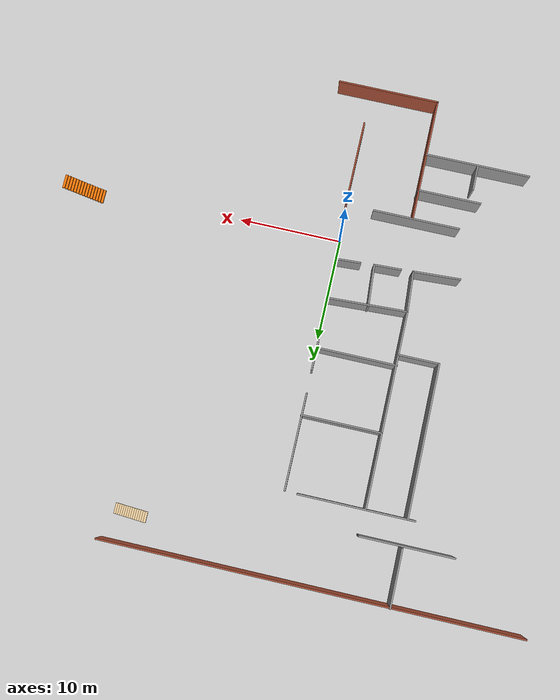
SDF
<sdf version="1.7">
 <world name="default">
  <model name="ground_plane">
   <static>1</static>
   <link name="link">
    <collision name="collision">
     <geometry><plane><normal>0 0 1</normal><size>100 100</size></plane></geometry>
     <surface><friction><ode><mu>100</mu><mu2>50</mu2></ode></friction></surface>
    </collision>
    <visual name="visual">
     <cast_shadows>0</cast_shadows>
     <geometry><plane><normal>0 0 1</normal><size>100 100</size></plane></geometry>
     <material>
      <script><uri>file://media/materials/scripts/gazebo.material</uri><name>Gazebo/Grey</name></script>
     </material>
    </visual>
   </link>
  </model>
  <model name="Sherman_ground">
   <pose>-0.396386 10.2382 0 0 -0 0</pose>
   <link name="Stairs_1">
    <visual name="Stairs_1_Visual_0">
     <pose>24.2922 -9.52404 0.083333 0 -0 1.5708</pose>
     <geometry><box><size>1.306 0.233333 0.166667</size></box></geometry>
     <material>
      <script><uri>file://media/materials/scripts/gazebo.material</uri><name>Gazebo/Grey</name></script>
      <ambient>0.996078 0.47451 0.0196078 1</ambient>
     </material>
     <meta><layer>0</layer></meta>
    </visual>
    <collision name="Stairs_1_Collision_0">
     <geometry><box><size>1.306 0.233333 0.166667</size></box></geometry>
     <pose>24.2922 -9.52404 0.083333 0 -0 1.5708</pose>
    </collision>
    <visual name="Stairs_1_Visual_1">
     <pose>24.5255 -9.52404 0.25 0 -0 1.5708</pose>
     <geometry><box><size>1.306 0.233333 0.166667</size></box></geometry>
     <material>
      <script><uri>file://media/materials/scripts/gazebo.material</uri><name>Gazebo/Grey</name></script>
      <ambient>0.996078 0.47451 0.0196078 1</ambient>
     </material>
     <meta><layer>0</layer></meta>
    </visual>
    <collision name="Stairs_1_Collision_1">
     <geometry><box><size>1.306 0.233333 0.166667</size></box></geometry>
     <pose>24.5255 -9.52404 0.25 0 -0 1.5708</pose>
    </collision>
    <visual name="Stairs_1_Visual_2">
     <pose>24.7589 -9.52404 0.416667 0 -0 1.5708</pose>
     <geometry><box><size>1.306 0.233333 0.166667</size></box></geometry>
     <material>
      <script><uri>file://media/materials/scripts/gazebo.material</uri><name>Gazebo/Grey</name></script>
      <ambient>0.996078 0.47451 0.0196078 1</ambient>
     </material>
     <meta><layer>0</layer></meta>
    </visual>
    <collision name="Stairs_1_Collision_2">
     <geometry><box><size>1.306 0.233333 0.166667</size></box></geometry>
     <pose>24.7589 -9.52404 0.416667 0 -0 1.5708</pose>
    </collision>
    <visual name="Stairs_1_Visual_3">
     <pose>24.9922 -9.52404 0.583333 0 -0 1.5708</pose>
     <geometry><box><size>1.306 0.233333 0.166667</size></box></geometry>
     <material>
      <script><uri>file://media/materials/scripts/gazebo.material</uri><name>Gazebo/Grey</name></script>
      <ambient>0.996078 0.47451 0.0196078 1</ambient>
     </material>
     <meta><layer>0</layer></meta>
    </visual>
    <collision name="Stairs_1_Collision_3">
     <geometry><box><size>1.306 0.233333 0.166667</size></box></geometry>
     <pose>24.9922 -9.52404 0.583333 0 -0 1.5708</pose>
    </collision>
    <visual name="Stairs_1_Visual_4">
     <pose>25.2255 -9.52404 0.75 0 -0 1.5708</pose>
     <geometry><box><size>1.306 0.233333 0.166667</size></box></geometry>
     <material>
      <script><uri>file://media/materials/scripts/gazebo.material</uri><name>Gazebo/Grey</name></script>
      <ambient>0.996078 0.47451 0.0196078 1</ambient>
     </material>
     <meta><layer>0</layer></meta>
    </visual>
    <collision name="Stairs_1_Collision_4">
     <geometry><box><size>1.306 0.233333 0.166667</size></box></geometry>
     <pose>25.2255 -9.52404 0.75 0 -0 1.5708</pose>
    </collision>
    <visual name="Stairs_1_Visual_5">
     <pose>25.4589 -9.52404 0.916667 0 -0 1.5708</pose>
     <geometry><box><size>1.306 0.233333 0.166667</size></box></geometry>
     <material>
      <script><uri>file://media/materials/scripts/gazebo.material</uri><name>Gazebo/Grey</name></script>
      <ambient>0.996078 0.47451 0.0196078 1</ambient>
     </material>
     <meta><layer>0</layer></meta>
    </visual>
    <collision name="Stairs_1_Collision_5">
     <geometry><box><size>1.306 0.233333 0.166667</size></box></geometry>
     <pose>25.4589 -9.52404 0.916667 0 -0 1.5708</pose>
    </collision>
    <visual name="Stairs_1_Visual_6">
     <pose>25.6922 -9.52404 1.08333 0 -0 1.5708</pose>
     <geometry><box><size>1.306 0.233333 0.166667</size></box></geometry>
     <material>
      <script><uri>file://media/materials/scripts/gazebo.material</uri><name>Gazebo/Grey</name></script>
      <ambient>0.996078 0.47451 0.0196078 1</ambient>
     </material>
     <meta><layer>0</layer></meta>
    </visual>
    <collision name="Stairs_1_Collision_6">
     <geometry><box><size>1.306 0.233333 0.166667</size></box></geometry>
     <pose>25.6922 -9.52404 1.08333 0 -0 1.5708</pose>
    </collision>
    <visual name="Stairs_1_Visual_7">
     <pose>25.9255 -9.52404 1.25 0 -0 1.5708</pose>
     <geometry><box><size>1.306 0.233333 0.166667</size></box></geometry>
     <material>
      <script><uri>file://media/materials/scripts/gazebo.material</uri><name>Gazebo/Grey</name></script>
      <ambient>0.996078 0.47451 0.0196078 1</ambient>
     </material>
     <meta><layer>0</layer></meta>
    </visual>
    <collision name="Stairs_1_Collision_7">
     <geometry><box><size>1.306 0.233333 0.166667</size></box></geometry>
     <pose>25.9255 -9.52404 1.25 0 -0 1.5708</pose>
    </collision>
    <visual name="Stairs_1_Visual_8">
     <pose>26.1589 -9.52404 1.41667 0 -0 1.5708</pose>
     <geometry><box><size>1.306 0.233333 0.166667</size></box></geometry>
     <material>
      <script><uri>file://media/materials/scripts/gazebo.material</uri><name>Gazebo/Grey</name></script>
      <ambient>0.996078 0.47451 0.0196078 1</ambient>
     </material>
     <meta><layer>0</layer></meta>
    </visual>
    <collision name="Stairs_1_Collision_8">
     <geometry><box><size>1.306 0.233333 0.166667</size></box></geometry>
     <pose>26.1589 -9.52404 1.41667 0 -0 1.5708</pose>
    </collision>
    <visual name="Stairs_1_Visual_9">
     <pose>26.3922 -9.52404 1.58333 0 -0 1.5708</pose>
     <geometry><box><size>1.306 0.233333 0.166667</size></box></geometry>
     <material>
      <script><uri>file://media/materials/scripts/gazebo.material</uri><name>Gazebo/Grey</name></script>
      <ambient>0.996078 0.47451 0.0196078 1</ambient>
     </material>
     <meta><layer>0</layer></meta>
    </visual>
    <collision name="Stairs_1_Collision_9">
     <geometry><box><size>1.306 0.233333 0.166667</size></box></geometry>
     <pose>26.3922 -9.52404 1.58333 0 -0 1.5708</pose>
    </collision>
    <visual name="Stairs_1_Visual_10">
     <pose>26.6255 -9.52404 1.75 0 -0 1.5708</pose>
     <geometry><box><size>1.306 0.233333 0.166667</size></box></geometry>
     <material>
      <script><uri>file://media/materials/scripts/gazebo.material</uri><name>Gazebo/Grey</name></script>
      <ambient>0.996078 0.47451 0.0196078 1</ambient>
     </material>
     <meta><layer>0</layer></meta>
    </visual>
    <collision name="Stairs_1_Collision_10">
     <geometry><box><size>1.306 0.233333 0.166667</size></box></geometry>
     <pose>26.6255 -9.52404 1.75 0 -0 1.5708</pose>
    </collision>
    <visual name="Stairs_1_Visual_11">
     <pose>26.8589 -9.52404 1.91667 0 -0 1.5708</pose>
     <geometry><box><size>1.306 0.233333 0.166667</size></box></geometry>
     <material>
      <script><uri>file://media/materials/scripts/gazebo.material</uri><name>Gazebo/Grey</name></script>
      <ambient>0.996078 0.47451 0.0196078 1</ambient>
     </material>
     <meta><layer>0</layer></meta>
    </visual>
    <collision name="Stairs_1_Collision_11">
     <geometry><box><size>1.306 0.233333 0.166667</size></box></geometry>
     <pose>26.8589 -9.52404 1.91667 0 -0 1.5708</pose>
    </collision>
    <visual name="Stairs_1_Visual_12">
     <pose>27.0922 -9.52404 2.08333 0 -0 1.5708</pose>
     <geometry><box><size>1.306 0.233333 0.166667</size></box></geometry>
     <material>
      <script><uri>file://media/materials/scripts/gazebo.material</uri><name>Gazebo/Grey</name></script>
      <ambient>0.996078 0.47451 0.0196078 1</ambient>
     </material>
     <meta><layer>0</layer></meta>
    </visual>
    <collision name="Stairs_1_Collision_12">
     <geometry><box><size>1.306 0.233333 0.166667</size></box></geometry>
     <pose>27.0922 -9.52404 2.08333 0 -0 1.5708</pose>
    </collision>
    <visual name="Stairs_1_Visual_13">
     <pose>27.3255 -9.52404 2.25 0 -0 1.5708</pose>
     <geometry><box><size>1.306 0.233333 0.166667</size></box></geometry>
     <material>
      <script><uri>file://media/materials/scripts/gazebo.material</uri><name>Gazebo/Grey</name></script>
      <ambient>0.996078 0.47451 0.0196078 1</ambient>
     </material>
     <meta><layer>0</layer></meta>
    </visual>
    <collision name="Stairs_1_Collision_13">
     <geometry><box><size>1.306 0.233333 0.166667</size></box></geometry>
     <pose>27.3255 -9.52404 2.25 0 -0 1.5708</pose>
    </collision>
    <visual name="Stairs_1_Visual_14">
     <pose>27.5589 -9.52403 2.41667 0 -0 1.5708</pose>
     <geometry><box><size>1.306 0.233333 0.166667</size></box></geometry>
     <material>
      <script><uri>file://media/materials/scripts/gazebo.material</uri><name>Gazebo/Grey</name></script>
      <ambient>0.996078 0.47451 0.0196078 1</ambient>
     </material>
     <meta><layer>0</layer></meta>
    </visual>
    <collision name="Stairs_1_Collision_14">
     <geometry><box><size>1.306 0.233333 0.166667</size></box></geometry>
     <pose>27.5589 -9.52403 2.41667 0 -0 1.5708</pose>
    </collision>
   </link>
   <link name="Stairs_2">
    <visual name="Stairs_2_Visual_0">
     <pose>15.3017 19.6509 0.083333 0 -0 -1.5708</pose>
     <geometry><box><size>1 0.233333 0.166667</size></box></geometry>
     <material>
      <script><uri>file://media/materials/scripts/gazebo.material</uri><name>Gazebo/Grey</name></script>
      <ambient>0.921569 0.807843 0.615686 1</ambient>
     </material>
     <meta><layer>0</layer></meta>
    </visual>
    <collision name="Stairs_2_Collision_0">
     <geometry><box><size>1 0.233333 0.166667</size></box></geometry>
     <pose>15.3017 19.6509 0.083333 0 -0 -1.5708</pose>
    </collision>
    <visual name="Stairs_2_Visual_1">
     <pose>15.0684 19.6509 0.25 0 -0 -1.5708</pose>
     <geometry><box><size>1 0.233333 0.166667</size></box></geometry>
     <material>
      <script><uri>file://media/materials/scripts/gazebo.material</uri><name>Gazebo/Grey</name></script>
      <ambient>0.921569 0.807843 0.615686 1</ambient>
     </material>
     <meta><layer>0</layer></meta>
    </visual>
    <collision name="Stairs_2_Collision_1">
     <geometry><box><size>1 0.233333 0.166667</size></box></geometry>
     <pose>15.0684 19.6509 0.25 0 -0 -1.5708</pose>
    </collision>
    <visual name="Stairs_2_Visual_2">
     <pose>14.835 19.6509 0.416667 0 -0 -1.5708</pose>
     <geometry><box><size>1 0.233333 0.166667</size></box></geometry>
     <material>
      <script><uri>file://media/materials/scripts/gazebo.material</uri><name>Gazebo/Grey</name></script>
      <ambient>0.921569 0.807843 0.615686 1</ambient>
     </material>
     <meta><layer>0</layer></meta>
    </visual>
    <collision name="Stairs_2_Collision_2">
     <geometry><box><size>1 0.233333 0.166667</size></box></geometry>
     <pose>14.835 19.6509 0.416667 0 -0 -1.5708</pose>
    </collision>
    <visual name="Stairs_2_Visual_3">
     <pose>14.6017 19.6509 0.583333 0 -0 -1.5708</pose>
     <geometry><box><size>1 0.233333 0.166667</size></box></geometry>
     <material>
      <script><uri>file://media/materials/scripts/gazebo.material</uri><name>Gazebo/Grey</name></script>
      <ambient>0.921569 0.807843 0.615686 1</ambient>
     </material>
     <meta><layer>0</layer></meta>
    </visual>
    <collision name="Stairs_2_Collision_3">
     <geometry><box><size>1 0.233333 0.166667</size></box></geometry>
     <pose>14.6017 19.6509 0.583333 0 -0 -1.5708</pose>
    </collision>
    <visual name="Stairs_2_Visual_4">
     <pose>14.3684 19.6509 0.75 0 -0 -1.5708</pose>
     <geometry><box><size>1 0.233333 0.166667</size></box></geometry>
     <material>
      <script><uri>file://media/materials/scripts/gazebo.material</uri><name>Gazebo/Grey</name></script>
      <ambient>0.921569 0.807843 0.615686 1</ambient>
     </material>
     <meta><layer>0</layer></meta>
    </visual>
    <collision name="Stairs_2_Collision_4">
     <geometry><box><size>1 0.233333 0.166667</size></box></geometry>
     <pose>14.3684 19.6509 0.75 0 -0 -1.5708</pose>
    </collision>
    <visual name="Stairs_2_Visual_5">
     <pose>14.135 19.6509 0.916667 0 -0 -1.5708</pose>
     <geometry><box><size>1 0.233333 0.166667</size></box></geometry>
     <material>
      <script><uri>file://media/materials/scripts/gazebo.material</uri><name>Gazebo/Grey</name></script>
      <ambient>0.921569 0.807843 0.615686 1</ambient>
     </material>
     <meta><layer>0</layer></meta>
    </visual>
    <collision name="Stairs_2_Collision_5">
     <geometry><box><size>1 0.233333 0.166667</size></box></geometry>
     <pose>14.135 19.6509 0.916667 0 -0 -1.5708</pose>
    </collision>
    <visual name="Stairs_2_Visual_6">
     <pose>13.9017 19.6509 1.08333 0 -0 -1.5708</pose>
     <geometry><box><size>1 0.233333 0.166667</size></box></geometry>
     <material>
      <script><uri>file://media/materials/scripts/gazebo.material</uri><name>Gazebo/Grey</name></script>
      <ambient>0.921569 0.807843 0.615686 1</ambient>
     </material>
     <meta><layer>0</layer></meta>
    </visual>
    <collision name="Stairs_2_Collision_6">
     <geometry><box><size>1 0.233333 0.166667</size></box></geometry>
     <pose>13.9017 19.6509 1.08333 0 -0 -1.5708</pose>
    </collision>
    <visual name="Stairs_2_Visual_7">
     <pose>13.6684 19.6509 1.25 0 -0 -1.5708</pose>
     <geometry><box><size>1 0.233333 0.166667</size></box></geometry>
     <material>
      <script><uri>file://media/materials/scripts/gazebo.material</uri><name>Gazebo/Grey</name></script>
      <ambient>0.921569 0.807843 0.615686 1</ambient>
     </material>
     <meta><layer>0</layer></meta>
    </visual>
    <collision name="Stairs_2_Collision_7">
     <geometry><box><size>1 0.233333 0.166667</size></box></geometry>
     <pose>13.6684 19.6509 1.25 0 -0 -1.5708</pose>
    </collision>
    <visual name="Stairs_2_Visual_8">
     <pose>13.435 19.6509 1.41667 0 -0 -1.5708</pose>
     <geometry><box><size>1 0.233333 0.166667</size></box></geometry>
     <material>
      <script><uri>file://media/materials/scripts/gazebo.material</uri><name>Gazebo/Grey</name></script>
      <ambient>0.921569 0.807843 0.615686 1</ambient>
     </material>
     <meta><layer>0</layer></meta>
    </visual>
    <collision name="Stairs_2_Collision_8">
     <geometry><box><size>1 0.233333 0.166667</size></box></geometry>
     <pose>13.435 19.6509 1.41667 0 -0 -1.5708</pose>
    </collision>
    <visual name="Stairs_2_Visual_9">
     <pose>13.2017 19.6509 1.58333 0 -0 -1.5708</pose>
     <geometry><box><size>1 0.233333 0.166667</size></box></geometry>
     <material>
      <script><uri>file://media/materials/scripts/gazebo.material</uri><name>Gazebo/Grey</name></script>
      <ambient>0.921569 0.807843 0.615686 1</ambient>
     </material>
     <meta><layer>0</layer></meta>
    </visual>
    <collision name="Stairs_2_Collision_9">
     <geometry><box><size>1 0.233333 0.166667</size></box></geometry>
     <pose>13.2017 19.6509 1.58333 0 -0 -1.5708</pose>
    </collision>
    <visual name="Stairs_2_Visual_10">
     <pose>12.9684 19.6509 1.75 0 -0 -1.5708</pose>
     <geometry><box><size>1 0.233333 0.166667</size></box></geometry>
     <material>
      <script><uri>file://media/materials/scripts/gazebo.material</uri><name>Gazebo/Grey</name></script>
      <ambient>0.921569 0.807843 0.615686 1</ambient>
     </material>
     <meta><layer>0</layer></meta>
    </visual>
    <collision name="Stairs_2_Collision_10">
     <geometry><box><size>1 0.233333 0.166667</size></box></geometry>
     <pose>12.9684 19.6509 1.75 0 -0 -1.5708</pose>
    </collision>
    <visual name="Stairs_2_Visual_11">
     <pose>12.735 19.6509 1.91667 0 -0 -1.5708</pose>
     <geometry><box><size>1 0.233333 0.166667</size></box></geometry>
     <material>
      <script><uri>file://media/materials/scripts/gazebo.material</uri><name>Gazebo/Grey</name></script>
      <ambient>0.921569 0.807843 0.615686 1</ambient>
     </material>
     <meta><layer>0</layer></meta>
    </visual>
    <collision name="Stairs_2_Collision_11">
     <geometry><box><size>1 0.233333 0.166667</size></box></geometry>
     <pose>12.735 19.6509 1.91667 0 -0 -1.5708</pose>
    </collision>
    <visual name="Stairs_2_Visual_12">
     <pose>12.5017 19.6509 2.08333 0 -0 -1.5708</pose>
     <geometry><box><size>1 0.233333 0.166667</size></box></geometry>
     <material>
      <script><uri>file://media/materials/scripts/gazebo.material</uri><name>Gazebo/Grey</name></script>
      <ambient>0.921569 0.807843 0.615686 1</ambient>
     </material>
     <meta><layer>0</layer></meta>
    </visual>
    <collision name="Stairs_2_Collision_12">
     <geometry><box><size>1 0.233333 0.166667</size></box></geometry>
     <pose>12.5017 19.6509 2.08333 0 -0 -1.5708</pose>
    </collision>
    <visual name="Stairs_2_Visual_13">
     <pose>12.2684 19.6509 2.25 0 -0 -1.5708</pose>
     <geometry><box><size>1 0.233333 0.166667</size></box></geometry>
     <material>
      <script><uri>file://media/materials/scripts/gazebo.material</uri><name>Gazebo/Grey</name></script>
      <ambient>0.921569 0.807843 0.615686 1</ambient>
     </material>
     <meta><layer>0</layer></meta>
    </visual>
    <collision name="Stairs_2_Collision_13">
     <geometry><box><size>1 0.233333 0.166667</size></box></geometry>
     <pose>12.2684 19.6509 2.25 0 -0 -1.5708</pose>
    </collision>
    <visual name="Stairs_2_Visual_14">
     <pose>12.035 19.6509 2.41667 0 -0 -1.5708</pose>
     <geometry><box><size>1 0.233333 0.166667</size></box></geometry>
     <material>
      <script><uri>file://media/materials/scripts/gazebo.material</uri><name>Gazebo/Grey</name></script>
      <ambient>0.921569 0.807843 0.615686 1</ambient>
     </material>
     <meta><layer>0</layer></meta>
    </visual>
    <collision name="Stairs_2_Collision_14">
     <geometry><box><size>1 0.233333 0.166667</size></box></geometry>
     <pose>12.035 19.6509 2.41667 0 -0 -1.5708</pose>
    </collision>
   </link>
   <link name="Wall_109">
    <collision name="Wall_109_Collision">
     <geometry><box><size>8.5 0.15 2.5</size></box></geometry>
     <pose>0 0 1.25 0 -0 0</pose>
    </collision>
    <visual name="Wall_109_Visual">
     <pose>0 0 1.25 0 -0 0</pose>
     <geometry><box><size>8.5 0.15 2.5</size></box></geometry>
     <material>
      <script><uri>file://media/materials/scripts/gazebo.material</uri><name>Gazebo/Grey</name></script>
      <ambient>1 1 1 1</ambient>
     </material>
     <meta><layer>0</layer></meta>
    </visual>
    <pose>-6.35702 -13.3085 0 0 -0 3.14159</pose>
   </link>
   <link name="Wall_130">
    <collision name="Wall_130_Collision">
     <geometry><box><size>4.66154 0.15 2.5</size></box></geometry>
     <pose>0 0 1.25 0 -0 0</pose>
    </collision>
    <visual name="Wall_130_Visual">
     <pose>0 0 1.25 0 -0 0</pose>
     <geometry><box><size>4.66154 0.15 2.5</size></box></geometry>
     <material>
      <script><uri>file://media/materials/scripts/gazebo.material</uri><name>Gazebo/Grey</name></script>
      <ambient>1 1 1 1</ambient>
     </material>
     <meta><layer>0</layer></meta>
    </visual>
    <pose>-9.35411 -8.3398 0 0 -0 0.054991</pose>
   </link>
   <link name="Wall_142">
    <collision name="Wall_142_Collision">
     <geometry><box><size>14.75 0.15 2.5</size></box></geometry>
     <pose>0 0 1.25 0 -0 0</pose>
    </collision>
    <visual name="Wall_142_Visual">
     <pose>0 0 1.25 0 -0 0</pose>
     <geometry><box><size>14.75 0.15 2.5</size></box></geometry>
     <material>
      <script><uri>file://media/materials/scripts/gazebo.material</uri><name>Gazebo/Grey</name></script>
      <ambient>1 1 1 1</ambient>
     </material>
     <meta><layer>0</layer></meta>
    </visual>
    <pose>-11.252 7.23883 0 0 -0 -1.5708</pose>
   </link>
   <link name="Wall_143">
    <collision name="Wall_143_Collision">
     <geometry><box><size>4 0.15 2.5</size></box></geometry>
     <pose>0 0 1.25 0 -0 0</pose>
    </collision>
    <visual name="Wall_143_Visual">
     <pose>0 0 1.25 0 -0 0</pose>
     <geometry><box><size>4 0.15 2.5</size></box></geometry>
     <material>
      <script><uri>file://media/materials/scripts/gazebo.material</uri><name>Gazebo/Grey</name></script>
      <ambient>1 1 1 1</ambient>
     </material>
     <meta><layer>0</layer></meta>
    </visual>
    <pose>-9.32701 -0.061173 0 0 -0 0</pose>
   </link>
   <link name="Wall_173">
    <collision name="Wall_173_Collision">
     <geometry><box><size>9 0.15 2.5</size></box></geometry>
     <pose>0 0 1.25 0 -0 0</pose>
    </collision>
    <visual name="Wall_173_Visual">
     <pose>0 0 1.25 0 -0 0</pose>
     <geometry><box><size>9 0.15 2.5</size></box></geometry>
     <material>
      <script><uri>file://media/materials/scripts/gazebo.material</uri><name>Gazebo/Grey</name></script>
      <ambient>1 1 1 1</ambient>
     </material>
     <meta><layer>0</layer></meta>
    </visual>
    <pose>-11.6961 16.9996 0 0 -0 0</pose>
   </link>
   <link name="Wall_189">
    <collision name="Wall_189_Collision">
     <geometry><box><size>39.75 0.15 2.5</size></box></geometry>
     <pose>0 0 1.25 0 -0 0</pose>
    </collision>
    <visual name="Wall_189_Visual">
     <pose>0 0 1.25 0 -0 0</pose>
     <geometry><box><size>39.75 0.15 2.5</size></box></geometry>
     <material>
      <script><uri>file://media/materials/scripts/gazebo.material</uri><name>Gazebo/Bricks</name></script>
      <ambient>1 1 1 1</ambient>
     </material>
     <meta><layer>0</layer></meta>
    </visual>
    <pose>-3.85525 22.5181 0 0 -0 0</pose>
   </link>
   <link name="Wall_221">
    <collision name="Wall_221_Collision">
     <geometry><box><size>8.5 0.15 2.5</size></box></geometry>
     <pose>0 0 1.25 0 -0 0</pose>
    </collision>
    <visual name="Wall_221_Visual">
     <pose>0 0 1.25 0 -0 0</pose>
     <geometry><box><size>8.5 0.15 2.5</size></box></geometry>
     <material>
      <script><uri>file://media/materials/scripts/gazebo.material</uri><name>Gazebo/Bricks</name></script>
      <ambient>1 1 1 1</ambient>
     </material>
     <meta><layer>0</layer></meta>
    </visual>
    <pose>0.573709 -17.5939 0 0 -0 -1.5708</pose>
   </link>
   <link name="Wall_224">
    <collision name="Wall_224_Collision">
     <geometry><box><size>10 0.15 2.5</size></box></geometry>
     <pose>0 0 1.25 0 -0 0</pose>
    </collision>
    <visual name="Wall_224_Visual">
     <pose>0 0 1.25 0 -0 0</pose>
     <geometry><box><size>10 0.15 2.5</size></box></geometry>
     <material>
      <script><uri>file://media/materials/scripts/gazebo.material</uri><name>Gazebo/Bricks</name></script>
      <ambient>1 1 1 1</ambient>
     </material>
     <meta><layer>0</layer></meta>
    </visual>
    <pose>-1.08221 -25.5119 0 0 -0 3.14159</pose>
   </link>
   <link name="Wall_225">
    <collision name="Wall_225_Collision">
     <geometry><box><size>12.25 0.15 2.5</size></box></geometry>
     <pose>0 0 1.25 0 -0 0</pose>
    </collision>
    <visual name="Wall_225_Visual">
     <pose>0 0 1.25 0 -0 0</pose>
     <geometry><box><size>12.25 0.15 2.5</size></box></geometry>
     <material>
      <script><uri>file://media/materials/scripts/gazebo.material</uri><name>Gazebo/Bricks</name></script>
      <ambient>1 1 1 1</ambient>
     </material>
     <meta><layer>0</layer></meta>
    </visual>
    <pose>-6.00721 -19.4619 0 0 -0 1.5708</pose>
   </link>
   <link name="Wall_230">
    <collision name="Wall_230_Collision">
     <geometry><box><size>6.25 0.15 2.5</size></box></geometry>
     <pose>0 0 1.25 0 -0 0</pose>
    </collision>
    <visual name="Wall_230_Visual">
     <pose>0 0 1.25 0 -0 0</pose>
     <geometry><box><size>6.25 0.15 2.5</size></box></geometry>
     <material>
      <script><uri>file://media/materials/scripts/gazebo.material</uri><name>Gazebo/Grey</name></script>
      <ambient>1 1 1 1</ambient>
     </material>
     <meta><layer>0</layer></meta>
    </visual>
    <pose>-8.9954 -16.2454 0 0 -0 3.14159</pose>
   </link>
   <link name="Wall_239">
    <collision name="Wall_239_Collision">
     <geometry><box><size>10.25 0.15 2.5</size></box></geometry>
     <pose>0 0 1.25 0 -0 0</pose>
    </collision>
    <visual name="Wall_239_Visual">
     <pose>0 0 1.25 0 -0 0</pose>
     <geometry><box><size>10.25 0.15 2.5</size></box></geometry>
     <material>
      <script><uri>file://media/materials/scripts/gazebo.material</uri><name>Gazebo/Grey</name></script>
      <ambient>1 1 1 1</ambient>
     </material>
     <meta><layer>0</layer></meta>
    </visual>
    <pose>-11.096 -19.9727 0 0 -0 0</pose>
   </link>
   <link name="Wall_241">
    <collision name="Wall_241_Collision">
     <geometry><box><size>2.5 0.15 2.5</size></box></geometry>
     <pose>0 0 1.25 0 -0 0</pose>
    </collision>
    <visual name="Wall_241_Visual">
     <pose>0 0 1.25 0 -0 0</pose>
     <geometry><box><size>2.5 0.15 2.5</size></box></geometry>
     <material>
      <script><uri>file://media/materials/scripts/gazebo.material</uri><name>Gazebo/Grey</name></script>
      <ambient>1 1 1 1</ambient>
     </material>
     <meta><layer>0</layer></meta>
    </visual>
    <pose>-11.1035 -18.6926 0 0 -0 -1.5708</pose>
   </link>
   <link name="Wall_254">
    <collision name="Wall_254_Collision">
     <geometry><box><size>4.17024 0.15 2.5</size></box></geometry>
     <pose>0 0 1.25 0 -0 0</pose>
    </collision>
    <visual name="Wall_254_Visual">
     <pose>0 0 1.25 0 -0 0</pose>
     <geometry><box><size>4.17024 0.15 2.5</size></box></geometry>
     <material>
      <script><uri>file://media/materials/scripts/gazebo.material</uri><name>Gazebo/Grey</name></script>
      <ambient>1 1 1 1</ambient>
     </material>
     <meta><layer>0</layer></meta>
    </visual>
    <pose>-3.48387 -6.02992 0 0 -0 -1.50074</pose>
   </link>
   <link name="Wall_255">
    <collision name="Wall_255_Collision">
     <geometry><box><size>2.72022 0.15 2.5</size></box></geometry>
     <pose>0 0 1.25 0 -0 0</pose>
    </collision>
    <visual name="Wall_255_Visual">
     <pose>0 0 1.25 0 -0 0</pose>
     <geometry><box><size>2.72022 0.15 2.5</size></box></geometry>
     <material>
      <script><uri>file://media/materials/scripts/gazebo.material</uri><name>Gazebo/Grey</name></script>
      <ambient>1 1 1 1</ambient>
     </material>
     <meta><layer>0</layer></meta>
    </visual>
    <pose>-4.62718 -8.08787 0 0 -0 -3.10052</pose>
   </link>
   <link name="Wall_261">
    <collision name="Wall_261_Collision">
     <geometry><box><size>5.5 0.15 2.5</size></box></geometry>
     <pose>0 0 1.25 0 -0 0</pose>
    </collision>
    <visual name="Wall_261_Visual">
     <pose>0 0 1.25 0 -0 0</pose>
     <geometry><box><size>5.5 0.15 2.5</size></box></geometry>
     <material>
      <script><uri>file://media/materials/scripts/gazebo.material</uri><name>Gazebo/Grey</name></script>
      <ambient>1 1 1 1</ambient>
     </material>
     <meta><layer>0</layer></meta>
    </visual>
    <pose>-11.3057 19.8958 0 0 -0 -1.5708</pose>
   </link>
   <link name="Wall_4">
    <collision name="Wall_4_Collision">
     <geometry><box><size>9.25 0.15 2.5</size></box></geometry>
     <pose>0 0 1.25 0 -0 0</pose>
    </collision>
    <visual name="Wall_4_Visual">
     <pose>0 0 1.25 0 -0 0</pose>
     <geometry><box><size>9.25 0.15 2.5</size></box></geometry>
     <material>
      <script><uri>file://media/materials/scripts/gazebo.material</uri><name>Gazebo/Grey</name></script>
      <ambient>1 1 1 1</ambient>
     </material>
     <meta><layer>0</layer></meta>
    </visual>
    <pose>0.238811 9.95262 0 0 -0 -1.5708</pose>
   </link>
   <link name="Wall_65">
    <collision name="Wall_65_Collision">
     <geometry><box><size>3 0.15 2.5</size></box></geometry>
     <pose>0 0 1.25 0 -0 0</pose>
    </collision>
    <visual name="Wall_65_Visual">
     <pose>0 0 1.25 0 -0 0</pose>
     <geometry><box><size>3 0.15 2.5</size></box></geometry>
     <material>
      <script><uri>file://media/materials/scripts/gazebo.material</uri><name>Gazebo/Grey</name></script>
      <ambient>1 1 1 1</ambient>
     </material>
     <meta><layer>0</layer></meta>
    </visual>
    <pose>0.264278 1.66308 0 0 -0 -1.5708</pose>
   </link>
   <link name="Wall_67">
    <collision name="Wall_67_Collision">
     <geometry><box><size>7.75 0.15 2.5</size></box></geometry>
     <pose>0 0 1.25 0 -0 0</pose>
    </collision>
    <visual name="Wall_67_Visual">
     <pose>0 0 1.25 0 -0 0</pose>
     <geometry><box><size>7.75 0.15 2.5</size></box></geometry>
     <material>
      <script><uri>file://media/materials/scripts/gazebo.material</uri><name>Gazebo/Grey</name></script>
      <ambient>1 1 1 1</ambient>
     </material>
     <meta><layer>0</layer></meta>
    </visual>
    <pose>-3.60469 0.97736 0 0 -0 0</pose>
   </link>
   <link name="Wall_77">
    <collision name="Wall_77_Collision">
     <geometry><box><size>2.25 0.15 2.5</size></box></geometry>
     <pose>0 0 1.25 0 -0 0</pose>
    </collision>
    <visual name="Wall_77_Visual">
     <pose>0 0 1.25 0 -0 0</pose>
     <geometry><box><size>2.25 0.15 2.5</size></box></geometry>
     <material>
      <script><uri>file://media/materials/scripts/gazebo.material</uri><name>Gazebo/Grey</name></script>
      <ambient>1 1 1 1</ambient>
     </material>
     <meta><layer>0</layer></meta>
    </visual>
    <pose>0.285793 -2.86328 0 0 -0 -1.5708</pose>
   </link>
   <link name="Wall_78">
    <collision name="Wall_78_Collision">
     <geometry><box><size>7.79239 0.15 2.5</size></box></geometry>
     <pose>0 0 1.25 0 -0 0</pose>
    </collision>
    <visual name="Wall_78_Visual">
     <pose>0 0 1.25 0 -0 0</pose>
     <geometry><box><size>7.79239 0.15 2.5</size></box></geometry>
     <material>
      <script><uri>file://media/materials/scripts/gazebo.material</uri><name>Gazebo/Grey</name></script>
      <ambient>1 1 1 1</ambient>
     </material>
     <meta><layer>0</layer></meta>
    </visual>
    <pose>-3.5311 -4.09454 0 0 -0 -3.09414</pose>
   </link>
   <link name="Wall_79">
    <collision name="Wall_79_Collision">
     <geometry><box><size>4.09771 0.15 2.5</size></box></geometry>
     <pose>0 0 1.25 0 -0 0</pose>
    </collision>
    <visual name="Wall_79_Visual">
     <pose>0 0 1.25 0 -0 0</pose>
     <geometry><box><size>4.09771 0.15 2.5</size></box></geometry>
     <material>
      <script><uri>file://media/materials/scripts/gazebo.material</uri><name>Gazebo/Grey</name></script>
      <ambient>1 1 1 1</ambient>
     </material>
     <meta><layer>0</layer></meta>
    </visual>
    <pose>-7.22487 -6.2458 0 0 -0 -1.50838</pose>
   </link>
   <link name="Wall_84">
    <collision name="Wall_84_Collision">
     <geometry><box><size>4.03437 0.15 2.5</size></box></geometry>
     <pose>0 0 1.25 0 -0 0</pose>
    </collision>
    <visual name="Wall_84_Visual">
     <pose>0 0 1.25 0 -0 0</pose>
     <geometry><box><size>4.03437 0.15 2.5</size></box></geometry>
     <material>
      <script><uri>file://media/materials/scripts/gazebo.material</uri><name>Gazebo/Grey</name></script>
      <ambient>1 1 1 1</ambient>
     </material>
     <meta><layer>0</layer></meta>
    </visual>
    <pose>0.37374 -5.85348 0 0 -0 -1.5255</pose>
   </link>
   <link name="Wall_85">
    <collision name="Wall_85_Collision">
     <geometry><box><size>2.61653 0.15 2.5</size></box></geometry>
     <pose>0 0 1.25 0 -0 0</pose>
    </collision>
    <visual name="Wall_85_Visual">
     <pose>0 0 1.25 0 -0 0</pose>
     <geometry><box><size>2.61653 0.15 2.5</size></box></geometry>
     <material>
      <script><uri>file://media/materials/scripts/gazebo.material</uri><name>Gazebo/Grey</name></script>
      <ambient>1 1 1 1</ambient>
     </material>
     <meta><layer>0</layer></meta>
    </visual>
    <pose>-0.76957 -7.86403 0 0 -0 -3.08451</pose>
   </link>
   <link name="Wall_88">
    <collision name="Wall_88_Collision">
     <geometry><box><size>19 0.15 2.5</size></box></geometry>
     <pose>0 0 1.25 0 -0 0</pose>
    </collision>
    <visual name="Wall_88_Visual">
     <pose>0 0 1.25 0 -0 0</pose>
     <geometry><box><size>19 0.15 2.5</size></box></geometry>
     <material>
      <script><uri>file://media/materials/scripts/gazebo.material</uri><name>Gazebo/Grey</name></script>
      <ambient>1 1 1 1</ambient>
     </material>
     <meta><layer>0</layer></meta>
    </visual>
    <pose>-7.348 5.14921 0 0 -0 1.5708</pose>
   </link>
   <link name="Wall_90">
    <collision name="Wall_90_Collision">
     <geometry><box><size>6.5 0.15 2.5</size></box></geometry>
     <pose>0 0 1.25 0 -0 0</pose>
    </collision>
    <visual name="Wall_90_Visual">
     <pose>0 0 1.25 0 -0 0</pose>
     <geometry><box><size>6.5 0.15 2.5</size></box></geometry>
     <material>
      <script><uri>file://media/materials/scripts/gazebo.material</uri><name>Gazebo/Grey</name></script>
      <ambient>1 1 1 1</ambient>
     </material>
     <meta><layer>0</layer></meta>
    </visual>
    <pose>-4.173 14.5742 0 0 -0 0</pose>
   </link>
   <link name="Wall_92">
    <collision name="Wall_92_Collision">
     <geometry><box><size>4.75 0.15 2.5</size></box></geometry>
     <pose>0 0 1.25 0 -0 0</pose>
    </collision>
    <visual name="Wall_92_Visual">
     <pose>0 0 1.25 0 -0 0</pose>
     <geometry><box><size>4.75 0.15 2.5</size></box></geometry>
     <material>
      <script><uri>file://media/materials/scripts/gazebo.material</uri><name>Gazebo/Grey</name></script>
      <ambient>1 1 1 1</ambient>
     </material>
     <meta><layer>0</layer></meta>
    </visual>
    <pose>-9.648 14.5742 0 0 -0 3.14159</pose>
   </link>
   <link name="Wall_98">
    <collision name="Wall_98_Collision">
     <geometry><box><size>7.75 0.15 2.5</size></box></geometry>
     <pose>0 0 1.25 0 -0 0</pose>
    </collision>
    <visual name="Wall_98_Visual">
     <pose>0 0 1.25 0 -0 0</pose>
     <geometry><box><size>7.75 0.15 2.5</size></box></geometry>
     <material>
      <script><uri>file://media/materials/scripts/gazebo.material</uri><name>Gazebo/Grey</name></script>
      <ambient>1 1 1 1</ambient>
     </material>
     <meta><layer>0</layer></meta>
    </visual>
    <pose>-3.52792 7.44847 0 0 -0 0</pose>
   </link>
   <static>1</static>
  </model>
 </world>
</sdf>
